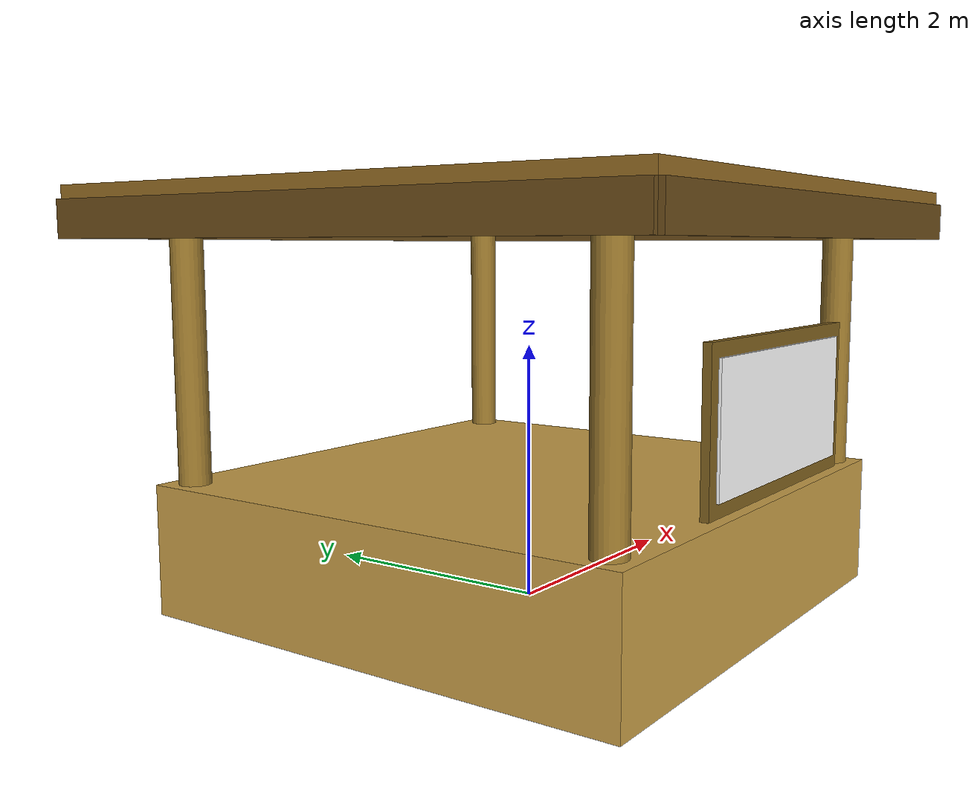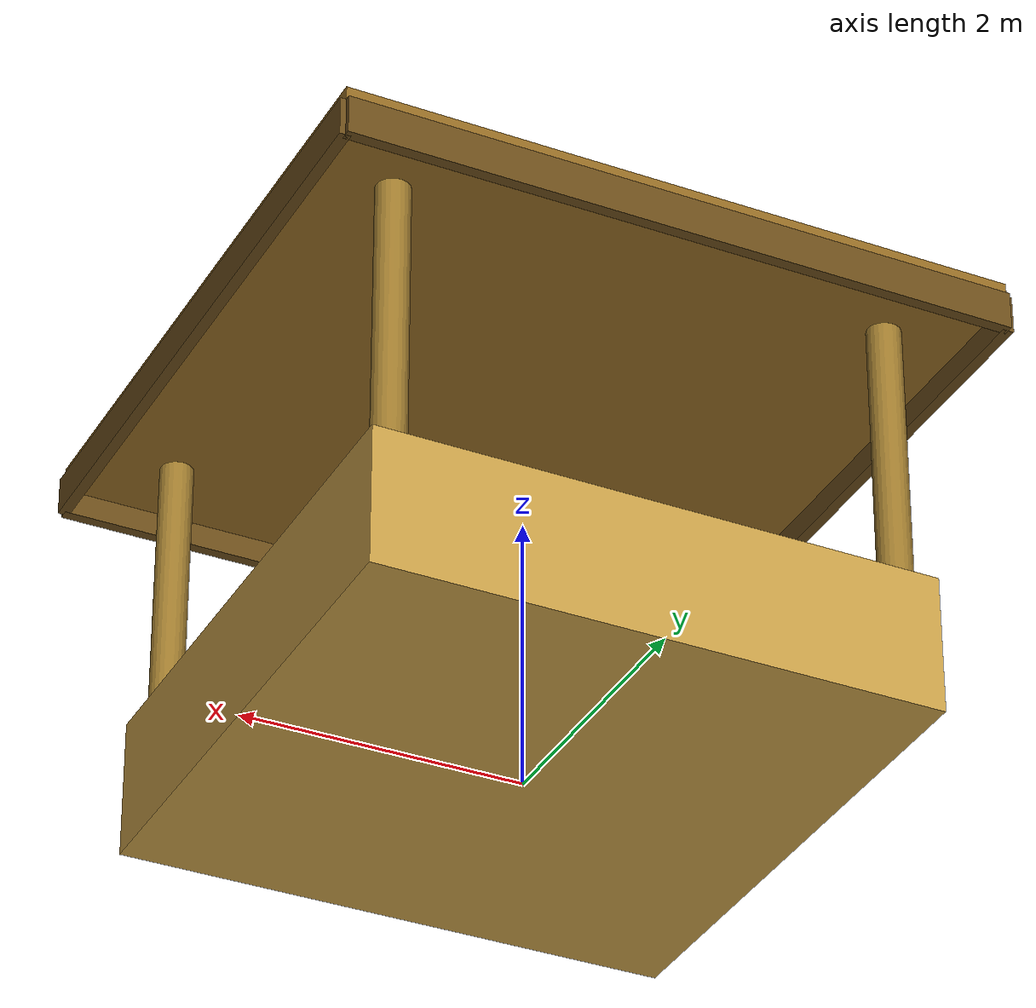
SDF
<?xml version="1.0" ?>
<!-- Kiosk / utility pavilion: 4x4m open structure, warm tan, flat roof. Front faces -Y -->
<sdf version="1.6">
  <model name="kiosk">
    <static>true</static>
    <link name="link">

      <!-- Collision for base and roof -->
      <collision name="col_base">
        <pose>0 0 0.5 0 0 0</pose>
        <geometry><box><size>4 4 1.0</size></box></geometry>
      </collision>
      <collision name="col_roof">
        <pose>0 0 3.1 0 0 0</pose>
        <geometry><box><size>4.8 4.8 0.2</size></box></geometry>
      </collision>
      <!-- Post collisions -->
      <collision name="col_post_fl">
        <pose>-1.8 -1.8 2.0 0 0 0</pose>
        <geometry><cylinder><radius>0.12</radius><length>2.0</length></cylinder></geometry>
      </collision>
      <collision name="col_post_fr">
        <pose>1.8 -1.8 2.0 0 0 0</pose>
        <geometry><cylinder><radius>0.12</radius><length>2.0</length></cylinder></geometry>
      </collision>
      <collision name="col_post_bl">
        <pose>-1.8 1.8 2.0 0 0 0</pose>
        <geometry><cylinder><radius>0.12</radius><length>2.0</length></cylinder></geometry>
      </collision>
      <collision name="col_post_br">
        <pose>1.8 1.8 2.0 0 0 0</pose>
        <geometry><cylinder><radius>0.12</radius><length>2.0</length></cylinder></geometry>
      </collision>

      <!-- Solid lower base / plinth -->
      <visual name="base">
        <pose>0 0 0.5 0 0 0</pose>
        <geometry><box><size>4 4 1.0</size></box></geometry>
        <material>
          <ambient>0.78 0.62 0.28 1</ambient>
          <diffuse>0.78 0.62 0.28 1</diffuse>
        </material>
      </visual>

      <!-- Corner posts (4 cylinders, from base top at Z=1 up to Z=3) -->
      <visual name="post_fl">
        <pose>-1.8 -1.8 2.0 0 0 0</pose>
        <geometry><cylinder><radius>0.12</radius><length>2.0</length></cylinder></geometry>
        <material><ambient>0.62 0.48 0.18 1</ambient><diffuse>0.62 0.48 0.18 1</diffuse></material>
      </visual>
      <visual name="post_fr">
        <pose>1.8 -1.8 2.0 0 0 0</pose>
        <geometry><cylinder><radius>0.12</radius><length>2.0</length></cylinder></geometry>
        <material><ambient>0.62 0.48 0.18 1</ambient><diffuse>0.62 0.48 0.18 1</diffuse></material>
      </visual>
      <visual name="post_bl">
        <pose>-1.8 1.8 2.0 0 0 0</pose>
        <geometry><cylinder><radius>0.12</radius><length>2.0</length></cylinder></geometry>
        <material><ambient>0.62 0.48 0.18 1</ambient><diffuse>0.62 0.48 0.18 1</diffuse></material>
      </visual>
      <visual name="post_br">
        <pose>1.8 1.8 2.0 0 0 0</pose>
        <geometry><cylinder><radius>0.12</radius><length>2.0</length></cylinder></geometry>
        <material><ambient>0.62 0.48 0.18 1</ambient><diffuse>0.62 0.48 0.18 1</diffuse></material>
      </visual>

      <!-- Flat roof with slight overhang -->
      <visual name="roof">
        <pose>0 0 3.1 0 0 0</pose>
        <geometry><box><size>4.8 4.8 0.2</size></box></geometry>
        <material>
          <ambient>0.58 0.42 0.14 1</ambient>
          <diffuse>0.58 0.42 0.14 1</diffuse>
        </material>
      </visual>

      <!-- Roof fascia strips (darker edge) -->
      <visual name="fascia_front">
        <pose>0 -2.4 2.96 0 0 0</pose>
        <geometry><box><size>4.8 0.08 0.28</size></box></geometry>
        <material><ambient>0.42 0.30 0.10 1</ambient><diffuse>0.42 0.30 0.10 1</diffuse></material>
      </visual>
      <visual name="fascia_back">
        <pose>0 2.4 2.96 0 0 0</pose>
        <geometry><box><size>4.8 0.08 0.28</size></box></geometry>
        <material><ambient>0.42 0.30 0.10 1</ambient><diffuse>0.42 0.30 0.10 1</diffuse></material>
      </visual>
      <visual name="fascia_left">
        <pose>-2.4 0 2.96 0 0 0</pose>
        <geometry><box><size>0.08 4.8 0.28</size></box></geometry>
        <material><ambient>0.42 0.30 0.10 1</ambient><diffuse>0.42 0.30 0.10 1</diffuse></material>
      </visual>
      <visual name="fascia_right">
        <pose>2.4 0 2.96 0 0 0</pose>
        <geometry><box><size>0.08 4.8 0.28</size></box></geometry>
        <material><ambient>0.42 0.30 0.10 1</ambient><diffuse>0.42 0.30 0.10 1</diffuse></material>
      </visual>

      <!-- Information notice board on front face -->
      <visual name="notice_board">
        <pose>0 -2.06 1.65 0 0 0</pose>
        <geometry><box><size>2.0 0.08 0.9</size></box></geometry>
        <material>
          <ambient>1.0 1.0 1.0 1</ambient>
          <diffuse>1.0 1.0 1.0 1</diffuse>
        </material>
      </visual>
      <!-- Notice board frame -->
      <visual name="board_frame">
        <pose>0 -2.05 1.65 0 0 0</pose>
        <geometry><box><size>2.2 0.06 1.1</size></box></geometry>
        <material><ambient>0.50 0.38 0.12 1</ambient><diffuse>0.50 0.38 0.12 1</diffuse></material>
      </visual>

      <!-- QR placeholder on notice board -->
      <visual name="qr_code">
        <pose>0 -2.025 1.65 0 0 0</pose>
        <geometry><box><size>0.5 0.05 0.5</size></box></geometry>
        <material><ambient>1 1 1 1</ambient><diffuse>1 1 1 1</diffuse></material>
      </visual>

    </link>
  </model>
</sdf>
